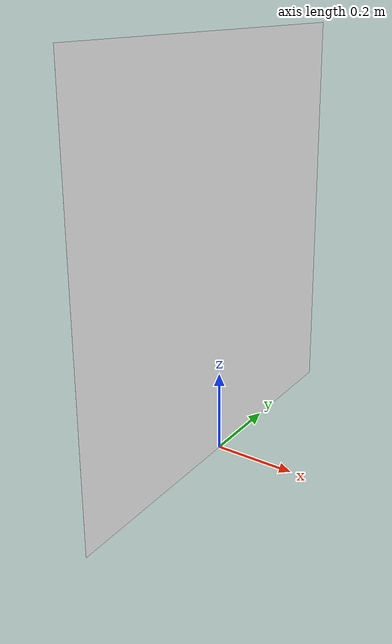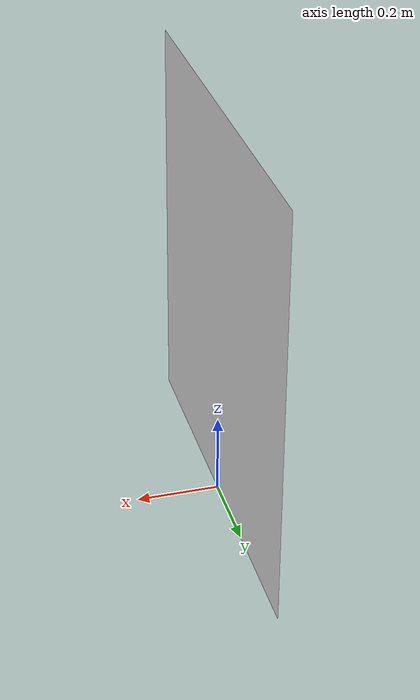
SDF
<?xml version='1.0'?>
<sdf version='1.7'>
  <model name='marker_2'>
    <link name='marker'>
      <pose>0 0 0.5 3.14159 1.57079 3.14159</pose>
      <self_collide>0</self_collide>
      <enable_wind>0</enable_wind>
      <kinematic>0</kinematic>
      <gravity>1</gravity>
      <inertial>
        <mass>1</mass>
        <pose>0 0 0 0 -0 0</pose>
        <inertia>
          <ixx>1</ixx>
          <ixy>0</ixy>
          <ixz>0</ixz>
          <iyy>1</iyy>
          <iyz>0</iyz>
          <izz>1</izz>
        </inertia>
      </inertial>
      <visual name='visual'>
        <geometry>
          <box>
            <size>1 0.98 1e-05</size>
          </box>
        </geometry>
        <material>
          <script>
            <uri>model://marker_2/materials/scripts</uri>
            <uri>model://marker_2/materials/textures</uri>
            <name>Marker2/Marker</name>
          </script>
          <ambient>1 1 1 1</ambient>
          <diffuse>1 1 1 1</diffuse>
          <specular>0 0 0 1</specular>
          <emissive>1 1 1 0</emissive>
          <shader type='vertex'>
            <normal_map>__default__</normal_map>
          </shader>
          <lighting>0</lighting>
        </material>
        <pose>0 0 0 0 -0 0</pose>
        <cast_shadows>1</cast_shadows>
        <transparency>0</transparency>
      </visual>
      <collision name='collision'>
        <laser_retro>0</laser_retro>
        <max_contacts>10</max_contacts>
        <pose>0 0 0 0 -0 0</pose>
        <geometry>
          <box>
            <size>0.1778 0.1778 1e-05</size>
          </box>
        </geometry>
        <surface>
          <friction>
            <ode>
              <mu>1</mu>
              <mu2>1</mu2>
              <fdir1>0 0 0</fdir1>
              <slip1>0</slip1>
              <slip2>0</slip2>
            </ode>
            <torsional>
              <coefficient>1</coefficient>
              <patch_radius>0</patch_radius>
              <surface_radius>0</surface_radius>
              <use_patch_radius>1</use_patch_radius>
              <ode>
                <slip>0</slip>
              </ode>
            </torsional>
          </friction>
          <bounce>
            <restitution_coefficient>0</restitution_coefficient>
            <threshold>1e+06</threshold>
          </bounce>
          <contact>
            <collide_without_contact>0</collide_without_contact>
            <collide_without_contact_bitmask>1</collide_without_contact_bitmask>
            <collide_bitmask>1</collide_bitmask>
            <ode>
              <soft_cfm>0</soft_cfm>
              <soft_erp>0.2</soft_erp>
              <kp>1e+13</kp>
              <kd>1</kd>
              <max_vel>0.01</max_vel>
              <min_depth>0</min_depth>
            </ode>
            <bullet>
              <split_impulse>1</split_impulse>
              <split_impulse_penetration_threshold>-0.01</split_impulse_penetration_threshold>
              <soft_cfm>0</soft_cfm>
              <soft_erp>0.2</soft_erp>
              <kp>1e+13</kp>
              <kd>1</kd>
            </bullet>
          </contact>
        </surface>
      </collision>
    </link>
    <link name='marker_pad'>
      <pose>-1e-05 0 0.5 3.14159 1.57079 3.14159</pose>
      <self_collide>0</self_collide>
      <enable_wind>0</enable_wind>
      <kinematic>0</kinematic>
      <gravity>1</gravity>
      <inertial>
        <mass>1</mass>
        <pose>0 0 0 0 -0 0</pose>
        <inertia>
          <ixx>1</ixx>
          <ixy>0</ixy>
          <ixz>0</ixz>
          <iyy>1</iyy>
          <iyz>0</iyz>
          <izz>1</izz>
        </inertia>
      </inertial>
      <visual name='visual'>
        <geometry>
          <box>
            <size>0 0 0</size>
          </box>
        </geometry>
        <material>
          <lighting>0</lighting>
          <script>
            <uri>file://media/materials/scripts/gazebo.material</uri>
            <name>Gazebo/White</name>
          </script>
          <ambient>0.3 0.3 0.3 1</ambient>
          <diffuse>0.7 0.7 0.7 1</diffuse>
          <specular>0.01 0.01 0.01 1</specular>
          <emissive>1 1 1 0</emissive>
          <shader type='vertex'>
            <normal_map>__default__</normal_map>
          </shader>
        </material>
        <cast_shadows>1</cast_shadows>
        <transparency>0</transparency>
        <pose>0 0 0 0 -0 0</pose>
      </visual>
      <collision name='collision'>
        <laser_retro>0</laser_retro>
        <max_contacts>10</max_contacts>
        <pose>0 0 0 0 -0 0</pose>
        <geometry>
          <box>
            <size>0.1778 0.1778 1e-05</size>
          </box>
        </geometry>
        <surface>
          <friction>
            <ode>
              <mu>1</mu>
              <mu2>1</mu2>
              <fdir1>0 0 0</fdir1>
              <slip1>0</slip1>
              <slip2>0</slip2>
            </ode>
            <torsional>
              <coefficient>1</coefficient>
              <patch_radius>0</patch_radius>
              <surface_radius>0</surface_radius>
              <use_patch_radius>1</use_patch_radius>
              <ode>
                <slip>0</slip>
              </ode>
            </torsional>
          </friction>
          <bounce>
            <restitution_coefficient>0</restitution_coefficient>
            <threshold>1e+06</threshold>
          </bounce>
          <contact>
            <collide_without_contact>0</collide_without_contact>
            <collide_without_contact_bitmask>1</collide_without_contact_bitmask>
            <collide_bitmask>1</collide_bitmask>
            <ode>
              <soft_cfm>0</soft_cfm>
              <soft_erp>0.2</soft_erp>
              <kp>1e+13</kp>
              <kd>1</kd>
              <max_vel>0.01</max_vel>
              <min_depth>0</min_depth>
            </ode>
            <bullet>
              <split_impulse>1</split_impulse>
              <split_impulse_penetration_threshold>-0.01</split_impulse_penetration_threshold>
              <soft_cfm>0</soft_cfm>
              <soft_erp>0.2</soft_erp>
              <kp>1e+13</kp>
              <kd>1</kd>
            </bullet>
          </contact>
        </surface>
      </collision>
    </link>
    <joint name='marker_JOINT_marker_pad' type='revolute'>
      <parent>marker</parent>
      <child>marker_pad</child>
      <pose>0 0 0 0 -0 0</pose>
      <axis>
        <xyz>0 0 1</xyz>
        <limit>
          <lower>0</lower>
          <upper>0</upper>
          <effort>-1</effort>
          <velocity>-1</velocity>
        </limit>
        <dynamics>
          <spring_reference>0</spring_reference>
          <spring_stiffness>0</spring_stiffness>
          <damping>0</damping>
          <friction>0</friction>
        </dynamics>
      </axis>
      <physics>
        <ode>
          <limit>
            <cfm>0</cfm>
            <erp>0.2</erp>
          </limit>
          <suspension>
            <cfm>0</cfm>
            <erp>0.2</erp>
          </suspension>
        </ode>
      </physics>
    </joint>
    <static>1</static>
    <allow_auto_disable>1</allow_auto_disable>
  </model>
</sdf>
